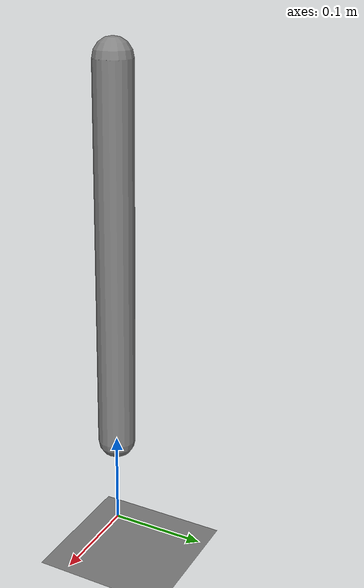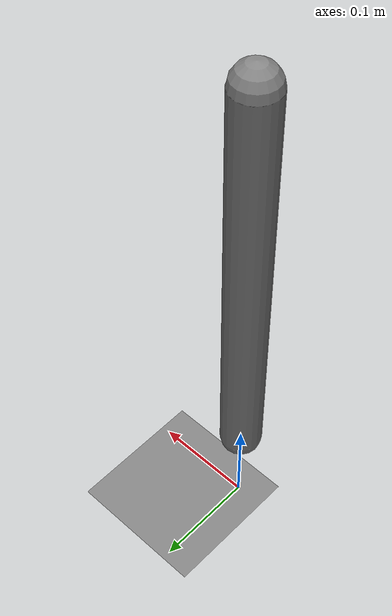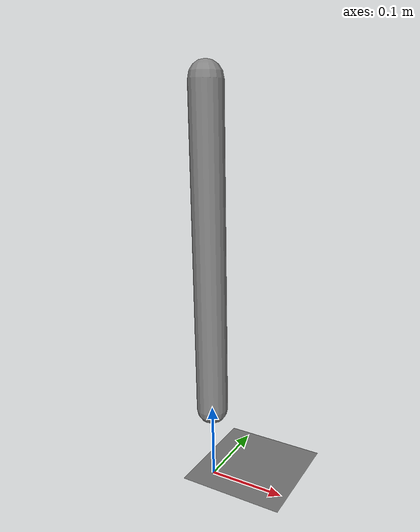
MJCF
<mujoco model="no_ctrlrange">
  <worldbody>
    <geom name="floor" type="plane" size="5 5 0.01"/>
    <body name="pole" pos="0 0 0.1">
      <joint name="hinge" type="hinge" axis="0 1 0" range="-1.0 1.0"/>
      <geom name="arm" type="capsule" size="0.02 0.2" pos="0 0 0.2"/>
    </body>
  </worldbody>
  <actuator>
    <motor name="arm" joint="hinge" gear="10"/>
  </actuator>
</mujoco>
